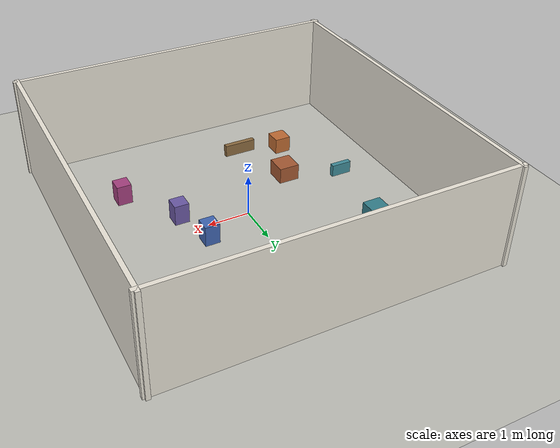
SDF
<?xml version="1.0" ?>
<sdf version="1.8">
  <world name="room_nav2_world">
    <physics name="1ms" type="ignored">
      <max_step_size>0.001</max_step_size>
      <real_time_factor>1.0</real_time_factor>
    </physics>

    <plugin filename="gz-sim-physics-system" name="gz::sim::systems::Physics"/>
    <plugin filename="gz-sim-user-commands-system" name="gz::sim::systems::UserCommands"/>
    <plugin filename="gz-sim-scene-broadcaster-system" name="gz::sim::systems::SceneBroadcaster"/>
    <plugin filename="gz-sim-sensors-system" name="gz::sim::systems::Sensors">
      <render_engine>ogre2</render_engine>
    </plugin>

    <light type="directional" name="sun">
      <cast_shadows>true</cast_shadows>
      <pose>0 0 10 0 0 0</pose>
      <diffuse>0.8 0.8 0.8 1</diffuse>
      <specular>0.2 0.2 0.2 1</specular>
      <direction>-0.5 0.1 -0.9</direction>
    </light>

    <model name="ground_plane">
      <static>true</static>
      <link name="link">
        <collision name="collision">
          <geometry><plane><normal>0 0 1</normal></plane></geometry>
          <surface><friction><ode><mu>1.0</mu><mu2>1.0</mu2></ode></friction></surface>
        </collision>
        <visual name="visual">
          <geometry><plane><normal>0 0 1</normal><size>8 8</size></plane></geometry>
          <material>
            <ambient>0.75 0.75 0.72 1</ambient>
            <diffuse>0.75 0.75 0.72 1</diffuse>
            <specular>0.2 0.2 0.2 1</specular>
          </material>
        </visual>
      </link>
    </model>

    <model name="room">
      <static>true</static>
      <link name="wall_back">
        <pose>0 4 1.25 0 0 0</pose>
        <visual name="visual">
          <geometry><box><size>8.2 0.1 2.5</size></box></geometry>
          <material>
            <ambient>0.92 0.90 0.85 1</ambient>
            <diffuse>0.92 0.90 0.85 1</diffuse>
            <specular>0.1 0.1 0.1 1</specular>
          </material>
        </visual>
        <collision name="collision">
          <geometry><box><size>8.2 0.1 2.5</size></box></geometry>
        </collision>
      </link>
      <link name="wall_front">
        <pose>0 -4 1.25 0 0 0</pose>
        <visual name="visual">
          <geometry><box><size>8.2 0.1 2.5</size></box></geometry>
          <material>
            <ambient>0.92 0.90 0.85 1</ambient>
            <diffuse>0.92 0.90 0.85 1</diffuse>
            <specular>0.1 0.1 0.1 1</specular>
          </material>
        </visual>
        <collision name="collision">
          <geometry><box><size>8.2 0.1 2.5</size></box></geometry>
        </collision>
      </link>
      <link name="wall_left">
        <pose>-4 0 1.25 0 0 0</pose>
        <visual name="visual">
          <geometry><box><size>0.1 8.2 2.5</size></box></geometry>
          <material>
            <ambient>0.92 0.90 0.85 1</ambient>
            <diffuse>0.92 0.90 0.85 1</diffuse>
            <specular>0.1 0.1 0.1 1</specular>
          </material>
        </visual>
        <collision name="collision">
          <geometry><box><size>0.1 8.2 2.5</size></box></geometry>
        </collision>
      </link>
      <link name="wall_right">
        <pose>4 0 1.25 0 0 0</pose>
        <visual name="visual">
          <geometry><box><size>0.1 8.2 2.5</size></box></geometry>
          <material>
            <ambient>0.92 0.90 0.85 1</ambient>
            <diffuse>0.92 0.90 0.85 1</diffuse>
            <specular>0.1 0.1 0.1 1</specular>
          </material>
        </visual>
        <collision name="collision">
          <geometry><box><size>0.1 8.2 2.5</size></box></geometry>
        </collision>
      </link>
    </model>

    <!-- Obstacles (must match lab6/maps/room_nav2.pgm generation) -->
    <model name="nav2_obstacle_pillar">
      <static>true</static>
      <pose>1.2 0.5 0.25 0 0 0</pose>
      <link name="link">
        <collision name="collision">
          <geometry><box><size>0.35 0.35 0.5</size></box></geometry>
        </collision>
        <visual name="visual">
          <geometry><box><size>0.35 0.35 0.5</size></box></geometry>
          <material>
            <ambient>0.2 0.35 0.6 1</ambient>
            <diffuse>0.25 0.4 0.7 1</diffuse>
          </material>
        </visual>
      </link>
    </model>

    <model name="nav2_obstacle_block">
      <static>true</static>
      <pose>-1.5 -1.0 0.2 0 0 0</pose>
      <link name="link">
        <collision name="collision">
          <geometry><box><size>0.5 0.5 0.4</size></box></geometry>
        </collision>
        <visual name="visual">
          <geometry><box><size>0.5 0.5 0.4</size></box></geometry>
          <material>
            <ambient>0.5 0.25 0.15 1</ambient>
            <diffuse>0.65 0.35 0.2 1</diffuse>
          </material>
        </visual>
      </link>
    </model>

    <model name="nav2_obstacle_bar">
      <static>true</static>
      <pose>0 2.0 0.15 0 0 0</pose>
      <link name="link">
        <collision name="collision">
          <geometry><box><size>1.2 0.15 0.3</size></box></geometry>
        </collision>
        <visual name="visual">
          <geometry><box><size>1.2 0.15 0.3</size></box></geometry>
          <material>
            <ambient>0.3 0.45 0.25 1</ambient>
            <diffuse>0.35 0.55 0.3 1</diffuse>
          </material>
        </visual>
      </link>
    </model>

    <model name="nav2_obstacle_pillar_b">
      <static>true</static>
      <pose>2.4 -1.8 0.25 0 0 0</pose>
      <link name="link">
        <collision name="collision">
          <geometry><box><size>0.35 0.35 0.5</size></box></geometry>
        </collision>
        <visual name="visual">
          <geometry><box><size>0.35 0.35 0.5</size></box></geometry>
          <material>
            <ambient>0.55 0.2 0.45 1</ambient>
            <diffuse>0.65 0.25 0.5 1</diffuse>
          </material>
        </visual>
      </link>
    </model>

    <model name="nav2_obstacle_block_b">
      <static>true</static>
      <pose>-2.5 1.5 0.2 0 0 0</pose>
      <link name="link">
        <collision name="collision">
          <geometry><box><size>0.45 0.45 0.4</size></box></geometry>
        </collision>
        <visual name="visual">
          <geometry><box><size>0.45 0.45 0.4</size></box></geometry>
          <material>
            <ambient>0.15 0.4 0.45 1</ambient>
            <diffuse>0.2 0.5 0.55 1</diffuse>
          </material>
        </visual>
      </link>
    </model>

    <model name="nav2_obstacle_bar_b">
      <static>true</static>
      <pose>-1.0 -2.5 0.15 0 0 0</pose>
      <link name="link">
        <collision name="collision">
          <geometry><box><size>0.8 0.12 0.3</size></box></geometry>
        </collision>
        <visual name="visual">
          <geometry><box><size>0.8 0.12 0.3</size></box></geometry>
          <material>
            <ambient>0.45 0.35 0.2 1</ambient>
            <diffuse>0.55 0.42 0.25 1</diffuse>
          </material>
        </visual>
      </link>
    </model>

    <model name="nav2_obstacle_pillar_c">
      <static>true</static>
      <pose>2.0 2.5 0.25 0 0 0</pose>
      <link name="link">
        <collision name="collision">
          <geometry><box><size>0.35 0.35 0.5</size></box></geometry>
        </collision>
        <visual name="visual">
          <geometry><box><size>0.35 0.35 0.5</size></box></geometry>
          <material>
            <ambient>0.25 0.5 0.35 1</ambient>
            <diffuse>0.3 0.6 0.4 1</diffuse>
          </material>
        </visual>
      </link>
    </model>

    <model name="nav2_obstacle_block_c">
      <static>true</static>
      <pose>-2.0 -2.2 0.2 0 0 0</pose>
      <link name="link">
        <collision name="collision">
          <geometry><box><size>0.4 0.4 0.4</size></box></geometry>
        </collision>
        <visual name="visual">
          <geometry><box><size>0.4 0.4 0.4</size></box></geometry>
          <material>
            <ambient>0.6 0.35 0.15 1</ambient>
            <diffuse>0.75 0.42 0.2 1</diffuse>
          </material>
        </visual>
      </link>
    </model>

    <model name="nav2_obstacle_pillar_d">
      <static>true</static>
      <pose>1.5 -0.5 0.25 0 0 0</pose>
      <link name="link">
        <collision name="collision">
          <geometry><box><size>0.35 0.35 0.5</size></box></geometry>
        </collision>
        <visual name="visual">
          <geometry><box><size>0.35 0.35 0.5</size></box></geometry>
          <material>
            <ambient>0.35 0.3 0.55 1</ambient>
            <diffuse>0.42 0.35 0.65 1</diffuse>
          </material>
        </visual>
      </link>
    </model>

    <model name="nav2_obstacle_bar_c">
      <static>true</static>
      <pose>-2.8 -0.5 0.15 0 0 0</pose>
      <link name="link">
        <collision name="collision">
          <geometry><box><size>0.5 0.12 0.3</size></box></geometry>
        </collision>
        <visual name="visual">
          <geometry><box><size>0.5 0.12 0.3</size></box></geometry>
          <material>
            <ambient>0.2 0.45 0.5 1</ambient>
            <diffuse>0.25 0.55 0.6 1</diffuse>
          </material>
        </visual>
      </link>
    </model>
  </world>
</sdf>
